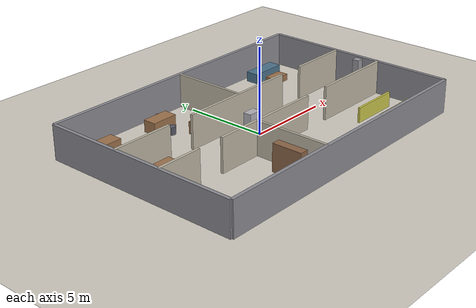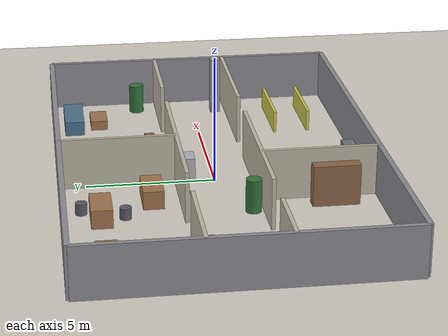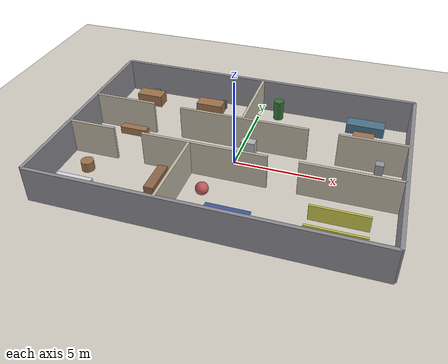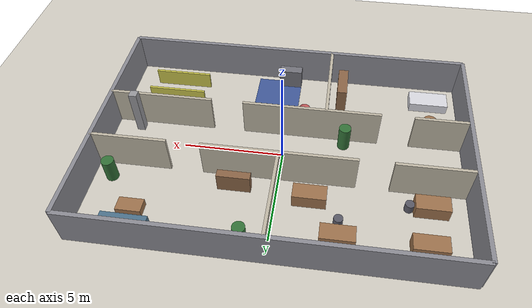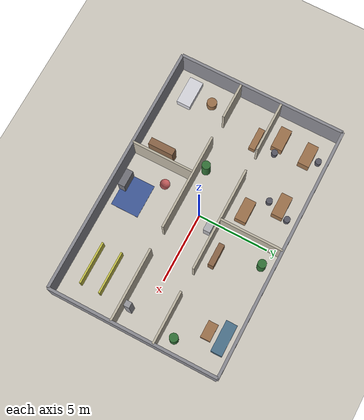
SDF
<sdf version="1.7">
 <world name="facility">
  <plugin filename="ignition-gazebo-physics-system" name="ignition::gazebo::systems::Physics"/>
  <plugin filename="ignition-gazebo-user-commands-system" name="ignition::gazebo::systems::UserCommands"/>
  <plugin filename="ignition-gazebo-scene-broadcaster-system" name="ignition::gazebo::systems::SceneBroadcaster"/>
  <plugin filename="ignition-gazebo-sensors-system" name="ignition::gazebo::systems::Sensors">
   <render_engine>ogre2</render_engine>
  </plugin>
  <light type="directional" name="sun">
   <pose>0 0 10 0 0 0</pose>
   <diffuse>0.85 0.85 0.85 1</diffuse>
   <specular>0.2 0.2 0.2 1</specular>
   <direction>-0.5 0.1 -0.9</direction>
  </light>
  <light type="point" name="indoor_light">
   <pose>0 0 3.5 0 0 0</pose>
   <diffuse>0.4 0.4 0.4 1</diffuse>
   <specular>0.1 0.1 0.1 1</specular>
   <attenuation><range>25</range><linear>0.05</linear><constant>0.4</constant></attenuation>
   <cast_shadows>false</cast_shadows>
  </light>
  <model name="ground_plane">
   <static>true</static>
   <link name="link">
    <collision name="collision">
     <geometry><plane><normal>0 0 1</normal><size>100 100</size></plane></geometry>
    </collision>
    <visual name="visual">
     <geometry><plane><normal>0 0 1</normal><size>100 100</size></plane></geometry>
     <material><ambient>0.82 0.80 0.76 1</ambient><diffuse>0.82 0.80 0.76 1</diffuse></material>
    </visual>
   </link>
  </model>
  <model name="outer_walls">
   <static>true</static>
   <link name="link">
    <collision name="north">
     <pose>0 6 1 0 0 0</pose>
     <geometry><box><size>18 0.2 2</size></box></geometry>
    </collision>
    <visual name="north_v">
     <pose>0 6 1 0 0 0</pose>
     <geometry><box><size>18 0.2 2</size></box></geometry>
     <material><ambient>0.55 0.55 0.58 1</ambient><diffuse>0.55 0.55 0.58 1</diffuse></material>
    </visual>
    <collision name="south">
     <pose>0 -6 1 0 0 0</pose>
     <geometry><box><size>18 0.2 2</size></box></geometry>
    </collision>
    <visual name="south_v">
     <pose>0 -6 1 0 0 0</pose>
     <geometry><box><size>18 0.2 2</size></box></geometry>
     <material><ambient>0.55 0.55 0.58 1</ambient><diffuse>0.55 0.55 0.58 1</diffuse></material>
    </visual>
    <collision name="east">
     <pose>9 0 1 0 0 0</pose>
     <geometry><box><size>0.2 12 2</size></box></geometry>
    </collision>
    <visual name="east_v">
     <pose>9 0 1 0 0 0</pose>
     <geometry><box><size>0.2 12 2</size></box></geometry>
     <material><ambient>0.55 0.55 0.58 1</ambient><diffuse>0.55 0.55 0.58 1</diffuse></material>
    </visual>
    <collision name="west">
     <pose>-9 0 1 0 0 0</pose>
     <geometry><box><size>0.2 12 2</size></box></geometry>
    </collision>
    <visual name="west_v">
     <pose>-9 0 1 0 0 0</pose>
     <geometry><box><size>0.2 12 2</size></box></geometry>
     <material><ambient>0.55 0.55 0.58 1</ambient><diffuse>0.55 0.55 0.58 1</diffuse></material>
    </visual>
   </link>
  </model>
  <model name="partitions">
   <static>true</static>
   <link name="link">
    <collision name="n1">
     <pose>-7.15 1.5 1 0 0 0</pose>
     <geometry><box><size>3.7 0.15 2</size></box></geometry>
    </collision>
    <visual name="n1_v">
     <pose>-7.15 1.5 1 0 0 0</pose>
     <geometry><box><size>3.7 0.15 2</size></box></geometry>
     <material><ambient>0.75 0.72 0.65 1</ambient><diffuse>0.75 0.72 0.65 1</diffuse></material>
    </visual>
    <collision name="n2">
     <pose>0 1.5 1 0 0 0</pose>
     <geometry><box><size>7.4 0.15 2</size></box></geometry>
    </collision>
    <visual name="n2_v">
     <pose>0 1.5 1 0 0 0</pose>
     <geometry><box><size>7.4 0.15 2</size></box></geometry>
     <material><ambient>0.75 0.72 0.65 1</ambient><diffuse>0.75 0.72 0.65 1</diffuse></material>
    </visual>
    <collision name="n3">
     <pose>7.15 1.5 1 0 0 0</pose>
     <geometry><box><size>3.7 0.15 2</size></box></geometry>
    </collision>
    <visual name="n3_v">
     <pose>7.15 1.5 1 0 0 0</pose>
     <geometry><box><size>3.7 0.15 2</size></box></geometry>
     <material><ambient>0.75 0.72 0.65 1</ambient><diffuse>0.75 0.72 0.65 1</diffuse></material>
    </visual>
    <collision name="s1">
     <pose>-7.65 -1.5 1 0 0 0</pose>
     <geometry><box><size>2.7 0.15 2</size></box></geometry>
    </collision>
    <visual name="s1_v">
     <pose>-7.65 -1.5 1 0 0 0</pose>
     <geometry><box><size>2.7 0.15 2</size></box></geometry>
     <material><ambient>0.75 0.72 0.65 1</ambient><diffuse>0.75 0.72 0.65 1</diffuse></material>
    </visual>
    <collision name="s2">
     <pose>-1.25 -1.5 1 0 0 0</pose>
     <geometry><box><size>6.9 0.15 2</size></box></geometry>
    </collision>
    <visual name="s2_v">
     <pose>-1.25 -1.5 1 0 0 0</pose>
     <geometry><box><size>6.9 0.15 2</size></box></geometry>
     <material><ambient>0.75 0.72 0.65 1</ambient><diffuse>0.75 0.72 0.65 1</diffuse></material>
    </visual>
    <collision name="s3">
     <pose>6.4 -1.5 1 0 0 0</pose>
     <geometry><box><size>5.2 0.15 2</size></box></geometry>
    </collision>
    <visual name="s3_v">
     <pose>6.4 -1.5 1 0 0 0</pose>
     <geometry><box><size>5.2 0.15 2</size></box></geometry>
     <material><ambient>0.75 0.72 0.65 1</ambient><diffuse>0.75 0.72 0.65 1</diffuse></material>
    </visual>
    <collision name="nmid">
     <pose>0 3.75 1 0 0 0</pose>
     <geometry><box><size>0.15 4.5 2</size></box></geometry>
    </collision>
    <visual name="nmid_v">
     <pose>0 3.75 1 0 0 0</pose>
     <geometry><box><size>0.15 4.5 2</size></box></geometry>
     <material><ambient>0.75 0.72 0.65 1</ambient><diffuse>0.75 0.72 0.65 1</diffuse></material>
    </visual>
    <collision name="smid">
     <pose>-2 -3.75 1 0 0 0</pose>
     <geometry><box><size>0.15 4.5 2</size></box></geometry>
    </collision>
    <visual name="smid_v">
     <pose>-2 -3.75 1 0 0 0</pose>
     <geometry><box><size>0.15 4.5 2</size></box></geometry>
     <material><ambient>0.75 0.72 0.65 1</ambient><diffuse>0.75 0.72 0.65 1</diffuse></material>
    </visual>
   </link>
  </model>
  <model name="dining_furniture">
   <static>true</static>
   <link name="link">
    <collision name="t1">
     <pose>-7.0 4.6 0.36 0 0 0</pose>
     <geometry><box><size>1.6 0.8 0.72</size></box></geometry>
    </collision>
    <visual name="t1_v">
     <pose>-7.0 4.6 0.36 0 0 0</pose>
     <geometry><box><size>1.6 0.8 0.72</size></box></geometry>
     <material><ambient>0.62 0.45 0.30 1</ambient><diffuse>0.62 0.45 0.30 1</diffuse></material>
    </visual>
    <collision name="t2">
     <pose>-3.0 4.6 0.36 0 0 0</pose>
     <geometry><box><size>1.6 0.8 0.72</size></box></geometry>
    </collision>
    <visual name="t2_v">
     <pose>-3.0 4.6 0.36 0 0 0</pose>
     <geometry><box><size>1.6 0.8 0.72</size></box></geometry>
     <material><ambient>0.62 0.45 0.30 1</ambient><diffuse>0.62 0.45 0.30 1</diffuse></material>
    </visual>
    <collision name="t3">
     <pose>-7.2 2.5 0.36 0 0 0</pose>
     <geometry><box><size>1.6 0.8 0.72</size></box></geometry>
    </collision>
    <visual name="t3_v">
     <pose>-7.2 2.5 0.36 0 0 0</pose>
     <geometry><box><size>1.6 0.8 0.72</size></box></geometry>
     <material><ambient>0.62 0.45 0.30 1</ambient><diffuse>0.62 0.45 0.30 1</diffuse></material>
    </visual>
    <collision name="t4">
     <pose>-1.6 2.6 0.36 0 0 0</pose>
     <geometry><box><size>1.6 0.8 0.72</size></box></geometry>
    </collision>
    <visual name="t4_v">
     <pose>-1.6 2.6 0.36 0 0 0</pose>
     <geometry><box><size>1.6 0.8 0.72</size></box></geometry>
     <material><ambient>0.62 0.45 0.30 1</ambient><diffuse>0.62 0.45 0.30 1</diffuse></material>
    </visual>
    <collision name="c1">
     <pose>-7.0 5.4 0.22 0 0 0</pose>
     <geometry><cylinder><radius>0.22</radius><length>0.45</length></cylinder></geometry>
    </collision>
    <visual name="c1_v">
     <pose>-7.0 5.4 0.22 0 0 0</pose>
     <geometry><cylinder><radius>0.22</radius><length>0.45</length></cylinder></geometry>
     <material><ambient>0.35 0.35 0.40 1</ambient><diffuse>0.35 0.35 0.40 1</diffuse></material>
    </visual>
    <collision name="c2">
     <pose>-3.0 3.7 0.22 0 0 0</pose>
     <geometry><cylinder><radius>0.22</radius><length>0.45</length></cylinder></geometry>
    </collision>
    <visual name="c2_v">
     <pose>-3.0 3.7 0.22 0 0 0</pose>
     <geometry><cylinder><radius>0.22</radius><length>0.45</length></cylinder></geometry>
     <material><ambient>0.35 0.35 0.40 1</ambient><diffuse>0.35 0.35 0.40 1</diffuse></material>
    </visual>
    <collision name="c3">
     <pose>-6.2 2.5 0.22 0 0 0</pose>
     <geometry><cylinder><radius>0.22</radius><length>0.45</length></cylinder></geometry>
    </collision>
    <visual name="c3_v">
     <pose>-6.2 2.5 0.22 0 0 0</pose>
     <geometry><cylinder><radius>0.22</radius><length>0.45</length></cylinder></geometry>
     <material><ambient>0.35 0.35 0.40 1</ambient><diffuse>0.35 0.35 0.40 1</diffuse></material>
    </visual>
    <collision name="c4">
     <pose>-2.4 5.3 0.22 0 0 0</pose>
     <geometry><cylinder><radius>0.22</radius><length>0.45</length></cylinder></geometry>
    </collision>
    <visual name="c4_v">
     <pose>-2.4 5.3 0.22 0 0 0</pose>
     <geometry><cylinder><radius>0.22</radius><length>0.45</length></cylinder></geometry>
     <material><ambient>0.35 0.35 0.40 1</ambient><diffuse>0.35 0.35 0.40 1</diffuse></material>
    </visual>
   </link>
  </model>
  <model name="lounge_furniture">
   <static>true</static>
   <link name="link">
    <collision name="sofa">
     <pose>6.5 5.2 0.3 0 0 0</pose>
     <geometry><box><size>2.2 0.8 0.6</size></box></geometry>
    </collision>
    <visual name="sofa_v">
     <pose>6.5 5.2 0.3 0 0 0</pose>
     <geometry><box><size>2.2 0.8 0.6</size></box></geometry>
     <material><ambient>0.30 0.45 0.55 1</ambient><diffuse>0.30 0.45 0.55 1</diffuse></material>
    </visual>
    <collision name="lowtable">
     <pose>6.5 4.15 0.2 0 0 0</pose>
     <geometry><box><size>1.2 0.7 0.4</size></box></geometry>
    </collision>
    <visual name="lowtable_v">
     <pose>6.5 4.15 0.2 0 0 0</pose>
     <geometry><box><size>1.2 0.7 0.4</size></box></geometry>
     <material><ambient>0.62 0.45 0.30 1</ambient><diffuse>0.62 0.45 0.30 1</diffuse></material>
    </visual>
    <collision name="plant1">
     <pose>1.2 5.2 0.6 0 0 0</pose>
     <geometry><cylinder><radius>0.3</radius><length>1.2</length></cylinder></geometry>
    </collision>
    <visual name="plant1_v">
     <pose>1.2 5.2 0.6 0 0 0</pose>
     <geometry><cylinder><radius>0.3</radius><length>1.2</length></cylinder></geometry>
     <material><ambient>0.20 0.45 0.22 1</ambient><diffuse>0.20 0.45 0.22 1</diffuse></material>
    </visual>
    <collision name="plant2">
     <pose>8.0 2.4 0.6 0 0 0</pose>
     <geometry><cylinder><radius>0.3</radius><length>1.2</length></cylinder></geometry>
    </collision>
    <visual name="plant2_v">
     <pose>8.0 2.4 0.6 0 0 0</pose>
     <geometry><cylinder><radius>0.3</radius><length>1.2</length></cylinder></geometry>
     <material><ambient>0.20 0.45 0.22 1</ambient><diffuse>0.20 0.45 0.22 1</diffuse></material>
    </visual>
    <collision name="shelf">
     <pose>2.0 2.3 0.5 0 0 0</pose>
     <geometry><box><size>1.6 0.4 1.0</size></box></geometry>
    </collision>
    <visual name="shelf_v">
     <pose>2.0 2.3 0.5 0 0 0</pose>
     <geometry><box><size>1.6 0.4 1.0</size></box></geometry>
     <material><ambient>0.55 0.40 0.28 1</ambient><diffuse>0.55 0.40 0.28 1</diffuse></material>
    </visual>
   </link>
  </model>
  <model name="bedroom_furniture">
   <static>true</static>
   <link name="link">
    <collision name="bed">
     <pose>-7.4 -4.6 0.25 0 0 0</pose>
     <geometry><box><size>2.0 1.0 0.5</size></box></geometry>
    </collision>
    <visual name="bed_v">
     <pose>-7.4 -4.6 0.25 0 0 0</pose>
     <geometry><box><size>2.0 1.0 0.5</size></box></geometry>
     <material><ambient>0.85 0.85 0.88 1</ambient><diffuse>0.85 0.85 0.88 1</diffuse></material>
    </visual>
    <collision name="closet">
     <pose>-2.7 -4.2 0.8 0 0 0</pose>
     <geometry><box><size>0.5 1.8 1.6</size></box></geometry>
    </collision>
    <visual name="closet_v">
     <pose>-2.7 -4.2 0.8 0 0 0</pose>
     <geometry><box><size>0.5 1.8 1.6</size></box></geometry>
     <material><ambient>0.55 0.40 0.28 1</ambient><diffuse>0.55 0.40 0.28 1</diffuse></material>
    </visual>
    <collision name="sidetable">
     <pose>-7.4 -2.9 0.28 0 0 0</pose>
     <geometry><cylinder><radius>0.35</radius><length>0.56</length></cylinder></geometry>
    </collision>
    <visual name="sidetable_v">
     <pose>-7.4 -2.9 0.28 0 0 0</pose>
     <geometry><cylinder><radius>0.35</radius><length>0.56</length></cylinder></geometry>
     <material><ambient>0.62 0.45 0.30 1</ambient><diffuse>0.62 0.45 0.30 1</diffuse></material>
    </visual>
   </link>
  </model>
  <model name="rehab_furniture">
   <static>true</static>
   <link name="link">
    <collision name="bar1">
     <pose>6.2 -3.2 0.45 0 0 0</pose>
     <geometry><box><size>3.0 0.12 0.9</size></box></geometry>
    </collision>
    <visual name="bar1_v">
     <pose>6.2 -3.2 0.45 0 0 0</pose>
     <geometry><box><size>3.0 0.12 0.9</size></box></geometry>
     <material><ambient>0.80 0.78 0.30 1</ambient><diffuse>0.80 0.78 0.30 1</diffuse></material>
    </visual>
    <collision name="bar2">
     <pose>6.2 -4.6 0.45 0 0 0</pose>
     <geometry><box><size>3.0 0.12 0.9</size></box></geometry>
    </collision>
    <visual name="bar2_v">
     <pose>6.2 -4.6 0.45 0 0 0</pose>
     <geometry><box><size>3.0 0.12 0.9</size></box></geometry>
     <material><ambient>0.80 0.78 0.30 1</ambient><diffuse>0.80 0.78 0.30 1</diffuse></material>
    </visual>
    <visual name="mat_v">
     <pose>0.8 -4.6 0.02 0 0 0</pose>
     <geometry><box><size>2.4 2.0 0.04</size></box></geometry>
     <material><ambient>0.25 0.35 0.60 1</ambient><diffuse>0.25 0.35 0.60 1</diffuse></material>
    </visual>
    <collision name="ball">
     <pose>-0.8 -3.0 0.35 0 0 0</pose>
     <geometry><sphere><radius>0.35</radius></sphere></geometry>
    </collision>
    <visual name="ball_v">
     <pose>-0.8 -3.0 0.35 0 0 0</pose>
     <geometry><sphere><radius>0.35</radius></sphere></geometry>
     <material><ambient>0.75 0.35 0.35 1</ambient><diffuse>0.75 0.35 0.35 1</diffuse></material>
    </visual>
    <collision name="rack">
     <pose>0.2 -5.4 0.55 0 0 0</pose>
     <geometry><box><size>1.2 0.5 1.1</size></box></geometry>
    </collision>
    <visual name="rack_v">
     <pose>0.2 -5.4 0.55 0 0 0</pose>
     <geometry><box><size>1.2 0.5 1.1</size></box></geometry>
     <material><ambient>0.45 0.45 0.48 1</ambient><diffuse>0.45 0.45 0.48 1</diffuse></material>
    </visual>
   </link>
  </model>
  <model name="corridor_objects">
   <static>true</static>
   <link name="link">
    <collision name="cart">
     <pose>0.5 1.0 0.45 0 0 0</pose>
     <geometry><box><size>0.8 0.5 0.9</size></box></geometry>
    </collision>
    <visual name="cart_v">
     <pose>0.5 1.0 0.45 0 0 0</pose>
     <geometry><box><size>0.8 0.5 0.9</size></box></geometry>
     <material><ambient>0.70 0.70 0.72 1</ambient><diffuse>0.70 0.70 0.72 1</diffuse></material>
    </visual>
    <collision name="bench">
     <pose>-6.5 1.0 0.22 0 0 0</pose>
     <geometry><box><size>1.6 0.45 0.45</size></box></geometry>
    </collision>
    <visual name="bench_v">
     <pose>-6.5 1.0 0.22 0 0 0</pose>
     <geometry><box><size>1.6 0.45 0.45</size></box></geometry>
     <material><ambient>0.62 0.45 0.30 1</ambient><diffuse>0.62 0.45 0.30 1</diffuse></material>
    </visual>
    <collision name="plant3">
     <pose>-3.0 -1.05 0.65 0 0 0</pose>
     <geometry><cylinder><radius>0.3</radius><length>1.3</length></cylinder></geometry>
    </collision>
    <visual name="plant3_v">
     <pose>-3.0 -1.05 0.65 0 0 0</pose>
     <geometry><cylinder><radius>0.3</radius><length>1.3</length></cylinder></geometry>
     <material><ambient>0.20 0.45 0.22 1</ambient><diffuse>0.20 0.45 0.22 1</diffuse></material>
    </visual>
    <collision name="pillar">
     <pose>7.6 -1.0 1.2 0 0 0</pose>
     <geometry><box><size>0.4 0.4 2.4</size></box></geometry>
    </collision>
    <visual name="pillar_v">
     <pose>7.6 -1.0 1.2 0 0 0</pose>
     <geometry><box><size>0.4 0.4 2.4</size></box></geometry>
     <material><ambient>0.60 0.60 0.62 1</ambient><diffuse>0.60 0.60 0.62 1</diffuse></material>
    </visual>
   </link>
  </model>
  <physics type="ode"><max_step_size>0.004</max_step_size><real_time_factor>1.0</real_time_factor></physics>
 </world>
</sdf>
